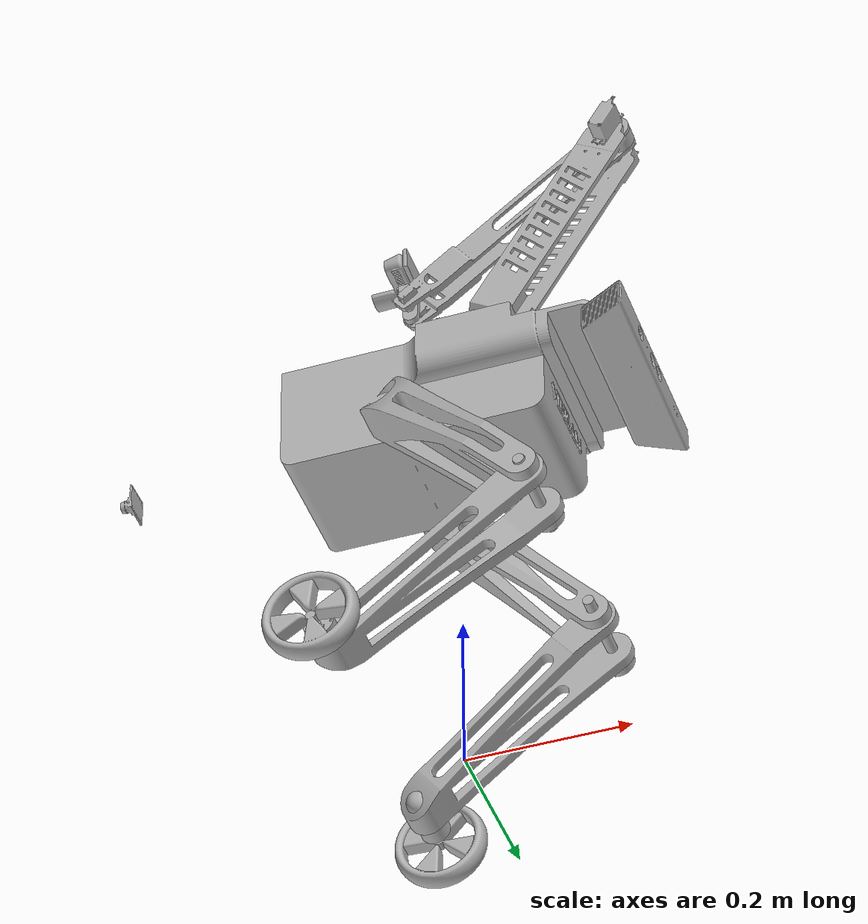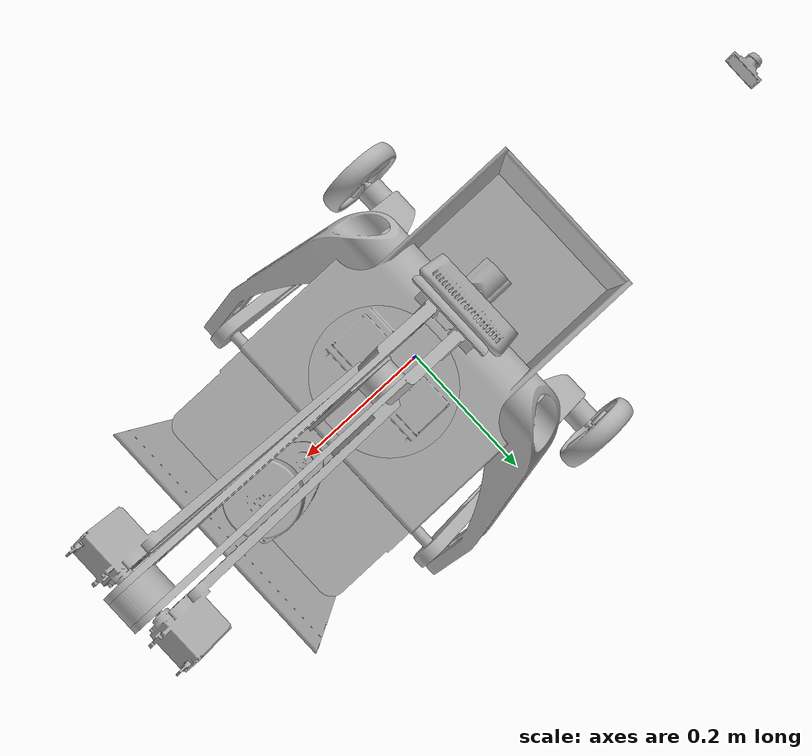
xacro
<?xml version="1.0" ?>
<robot name="vikram" xmlns:xacro="http://www.ros.org/wiki/xacro">

<xacro:include filename="$(find vikram_description)/urdf/materials.xacro" />
<xacro:include filename="$(find vikram_description)/urdf/vikram.trans" />
<xacro:include filename="$(find vikram_description)/urdf/vikram.gazebo" />
<link name="base_link">
  <inertial>
    <origin rpy="0 0 0" xyz="0.010234443834109541 0.005839078006195386 0.5156054657497448"/>
    <mass value="7.067521369442045"/>
    <inertia ixx="0.037702" ixy="-0.000184" ixz="-0.006128" iyy="0.061125" iyz="-4.7e-05" izz="0.069572"/>
  </inertial>
  <visual>
    <origin rpy="0 0 0" xyz="0 0 0"/>
    <geometry>
      <mesh filename="package://vikram_description/meshes/base_link.stl" scale="0.001 0.001 0.001"/>
    </geometry>
    <material name="silver_default"/>
  </visual>
  <collision>
    <origin rpy="0 0 0" xyz="0 0 0"/>
    <geometry>
      <mesh filename="package://vikram_description/meshes/base_link.stl" scale="0.001 0.001 0.001"/>
    </geometry>
  </collision>
</link>

<link name="kinect_link_1">
  <inertial>
    <origin rpy="0 0 0" xyz="-0.105299 -0.006474 -0.539516"/>
    <mass value="0.5422411898927701"/>
    <inertia ixx="0.002787" ixy="1.2e-05" ixz="-1e-06" iyy="0.000223" iyz="-2e-06" izz="0.002879"/>
  </inertial>
  <visual>
    <origin rpy="0 0 0" xyz="-0.105299 -0.006474 -0.539516"/>
    <geometry>
      <mesh filename="package://vikram_description/meshes/kinect_link_1.stl" scale="0.001 0.001 0.001"/>
    </geometry>
    <material name="silver_default"/>
  </visual>
  <collision>
    <origin rpy="0 0 0" xyz="-0.105299 -0.006474 -0.539516"/>
    <geometry>
      <mesh filename="package://vikram_description/meshes/kinect_link_1.stl" scale="0.001 0.001 0.001"/>
    </geometry>
  </collision>
</link>

<link name="kinect_depth_link"></link>

<link name="camera_link_1">
  <inertial>
    <origin rpy="0 0 0" xyz="-0.005985213903832054 4.595539482990865e-06 -5.399212529610953e-05"/>
    <mass value="0.12265645188988797"/>
    <inertia ixx="1.3e-05" ixy="0.0" ixz="0.0" iyy="1e-05" iyz="0.0" izz="1.1e-05"/>
  </inertial>
  <visual>
    <origin rpy="0 0 3.14" xyz="0.202846 -0.004446 -0.521349"/>
    <geometry>
      <mesh filename="package://vikram_description/meshes/camera_link_1.stl" scale="0.001 0.001 0.001"/>
    </geometry>
    <material name="silver_default"/>
  </visual>
  <collision>
    <origin rpy="0 0 0" xyz="0.202846 -0.004446 -0.521349"/>
    <geometry>
      <mesh filename="package://vikram_description/meshes/camera_link_1.stl" scale="0.001 0.001 0.001"/>
    </geometry>
  </collision>
</link>

<link name="leftthigh_1">
  <inertial>
    <origin rpy="0 0 0" xyz="0.07377829422801023 0.04639468168714603 -0.080608614634392"/>
    <mass value="0.4240185441189414"/>
    <inertia ixx="0.002324" ixy="-0.000216" ixz="0.001547" iyy="0.003343" iyz="0.000238" izz="0.002039"/>
  </inertial>
  <visual>
    <origin rpy="0 0 0" xyz="0.058444 -0.090338 -0.467873"/>
    <geometry>
      <mesh filename="package://vikram_description/meshes/leftthigh_1.stl" scale="0.001 0.001 0.001"/>
    </geometry>
    <material name="silver_default"/>
  </visual>
  <collision>
    <origin rpy="0 0 0" xyz="0.058444 -0.090338 -0.467873"/>
    <geometry>
      <mesh filename="package://vikram_description/meshes/leftthigh_1.stl" scale="0.001 0.001 0.001"/>
    </geometry>
  </collision>
</link>

<link name="rightthigh_1">
  <inertial>
    <origin rpy="0 0 0" xyz="0.07380773601400971 -0.045398010762963056 -0.0811467726085155"/>
    <mass value="0.4240185441189414"/>
    <inertia ixx="0.00232" ixy="0.000201" ixz="0.00155" iyy="0.003348" iyz="-0.000218" izz="0.002037"/>
  </inertial>
  <visual>
    <origin rpy="0 0 0" xyz="0.057446 0.079659 -0.467736"/>
    <geometry>
      <mesh filename="package://vikram_description/meshes/rightthigh_1.stl" scale="0.001 0.001 0.001"/>
    </geometry>
    <material name="silver_default"/>
  </visual>
  <collision>
    <origin rpy="0 0 0" xyz="0.057446 0.079659 -0.467736"/>
    <geometry>
      <mesh filename="package://vikram_description/meshes/rightthigh_1.stl" scale="0.001 0.001 0.001"/>
    </geometry>
  </collision>
</link>

<link name="motor_link_1_1">
  <inertial>
    <origin rpy="0 0 0" xyz="-4.118988736685758e-05 0.006740500896890156 -1.1205790919913139e-05"/>
    <mass value="0.06999823026998438"/>
    <inertia ixx="3.2e-05" ixy="0.0" ixz="-0.0" iyy="1.1e-05" iyz="-0.0" izz="3.2e-05"/>
  </inertial>
  <visual>
    <origin rpy="0 0 0" xyz="0.104626 0.174622 -0.076216"/>
    <geometry>
      <mesh filename="package://vikram_description/meshes/motor_link_1_1.stl" scale="0.001 0.001 0.001"/>
    </geometry>
    <material name="silver_default"/>
  </visual>
  <collision>
    <origin rpy="0 0 0" xyz="0.104626 0.174622 -0.076216"/>
    <geometry>
      <mesh filename="package://vikram_description/meshes/motor_link_1_1.stl" scale="0.001 0.001 0.001"/>
    </geometry>
  </collision>
</link>

<link name="motor_link_1_2">
  <inertial>
    <origin rpy="0 0 0" xyz="3.847032894968572e-05 -0.006739958438094273 -2.230950096296369e-05"/>
    <mass value="0.06999823026998438"/>
    <inertia ixx="3.2e-05" ixy="0.0" ixz="-0.0" iyy="1.1e-05" iyz="0.0" izz="3.2e-05"/>
  </inertial>
  <visual>
    <origin rpy="0 0 0" xyz="0.10744 -0.185367 -0.07736"/>
    <geometry>
      <mesh filename="package://vikram_description/meshes/motor_link_1_2.stl" scale="0.001 0.001 0.001"/>
    </geometry>
    <material name="silver_default"/>
  </visual>
  <collision>
    <origin rpy="0 0 0" xyz="0.10744 -0.185367 -0.07736"/>
    <geometry>
      <mesh filename="package://vikram_description/meshes/motor_link_1_2.stl" scale="0.001 0.001 0.001"/>
    </geometry>
  </collision>
</link>

<link name="wheel_link_2_2">
  <inertial>
    <origin rpy="0 0 0" xyz="0.00011670928409539261 -0.019853226898058435 -1.620426218622295e-05"/>
    <mass value="0.1426377919274306"/>
    <inertia ixx="0.000147" ixy="-1e-06" ixz="-0.0" iyy="0.000281" iyz="0.0" izz="0.000147"/>
  </inertial>
  <visual>
    <origin rpy="0 0 0" xyz="0.105338 0.201121 -0.069249"/>
    <geometry>
      <mesh filename="package://vikram_description/meshes/wheel_link_2_2.stl" scale="0.001 0.001 0.001"/>
    </geometry>
    <material name="silver_default"/>
  </visual>
  <collision>
    <origin rpy="0 0 0" xyz="0.105338 0.201121 -0.069249"/>
    <geometry>
      <mesh filename="package://vikram_description/meshes/wheel_link_2_2.stl" scale="0.001 0.001 0.001"/>
    </geometry>
  </collision>
</link>

<link name="wheel_link_2_1">
  <inertial>
    <origin rpy="0 0 0" xyz="-0.00011679030504793686 0.019853386055058042 1.6249222171277333e-05"/>
    <mass value="0.1426377919274306"/>
    <inertia ixx="0.000147" ixy="-1e-06" ixz="0.0" iyy="0.000281" iyz="0.0" izz="0.000147"/>
  </inertial>
  <visual>
    <origin rpy="0 0 0" xyz="0.107855 -0.211871 -0.070386"/>
    <geometry>
      <mesh filename="package://vikram_description/meshes/wheel_link_2_1.stl" scale="0.001 0.001 0.001"/>
    </geometry>
    <material name="silver_default"/>
  </visual>
  <collision>
    <origin rpy="0 0 0" xyz="0.107855 -0.211871 -0.070386"/>
    <geometry>
      <mesh filename="package://vikram_description/meshes/wheel_link_2_1.stl" scale="0.001 0.001 0.001"/>
    </geometry>
  </collision>
</link>

<link name="shoulder_link_1">
  <inertial>
    <origin rpy="0 0 0" xyz="0.10535734876012619 0.010445042287466783 0.16921043553877368"/>
    <mass value="0.3248629426538314"/>
    <inertia ixx="0.003938" ixy="-5e-06" ixz="-0.002287" iyy="0.005264" iyz="-9e-06" izz="0.001686"/>
  </inertial>
  <visual>
    <origin rpy="0 0 0" xyz="-0.022298 0.007587 -0.638232"/>
    <geometry>
      <mesh filename="package://vikram_description/meshes/shoulder_link_1.stl" scale="0.001 0.001 0.001"/>
    </geometry>
    <material name="silver_default"/>
  </visual>
  <collision>
    <origin rpy="0 0 0" xyz="-0.022298 0.007587 -0.638232"/>
    <geometry>
      <mesh filename="package://vikram_description/meshes/shoulder_link_1.stl" scale="0.001 0.001 0.001"/>
    </geometry>
  </collision>
</link>

<link name="elbow_link_1">
  <inertial>
    <origin rpy="0 0 0" xyz="-0.16761417274766444 -0.010877496122171239 -0.1315159566827231"/>
    <mass value="0.14217501750592101"/>
    <inertia ixx="0.00078" ixy="-6e-06" ixz="-0.000932" iyy="0.001955" iyz="-5e-06" izz="0.001237"/>
  </inertial>
  <visual>
    <origin rpy="0 0 0" xyz="-0.211852 -0.012739 -0.942825"/>
    <geometry>
      <mesh filename="package://vikram_description/meshes/elbow_link_1.stl" scale="0.001 0.001 0.001"/>
    </geometry>
    <material name="silver_default"/>
  </visual>
  <collision>
    <origin rpy="0 0 0" xyz="-0.211852 -0.012739 -0.942825"/>
    <geometry>
      <mesh filename="package://vikram_description/meshes/elbow_link_1.stl" scale="0.001 0.001 0.001"/>
    </geometry>
  </collision>
</link>

<link name="wrist_link_1">
  <inertial>
    <origin rpy="0 0 0" xyz="-0.0003923470619509456 0.003990244802068195 0.01623925564380535"/>
    <mass value="0.01246916080662524"/>
    <inertia ixx="4e-06" ixy="-0.0" ixz="0.0" iyy="4e-06" iyz="0.0" izz="1e-06"/>
  </inertial>
  <visual>
    <origin rpy="0 0 0" xyz="0.063922 0.002655 -0.726297"/>
    <geometry>
      <mesh filename="package://vikram_description/meshes/wrist_link_1.stl" scale="0.001 0.001 0.001"/>
    </geometry>
    <material name="silver_default"/>
  </visual>
  <collision>
    <origin rpy="0 0 0" xyz="0.063922 0.002655 -0.726297"/>
    <geometry>
      <mesh filename="package://vikram_description/meshes/wrist_link_1.stl" scale="0.001 0.001 0.001"/>
    </geometry>
  </collision>
</link>

<link name="grip_link_1">
  <inertial>
    <origin rpy="0 0 0" xyz="-0.038797787730500036 -0.00019879767110197945 0.0034710253664366197"/>
    <mass value="0.012180779699964627"/>
    <inertia ixx="1e-06" ixy="-0.0" ixz="0.0" iyy="3e-06" iyz="-0.0" izz="3e-06"/>
  </inertial>
  <visual>
    <origin rpy="0 0 0" xyz="0.050971 -0.001367 -0.7496"/>
    <geometry>
      <mesh filename="package://vikram_description/meshes/grip_link_1.stl" scale="0.001 0.001 0.001"/>
    </geometry>
    <material name="silver_default"/>
  </visual>
  <collision>
    <origin rpy="0 0 0" xyz="0.050971 -0.001367 -0.7496"/>
    <geometry>
      <mesh filename="package://vikram_description/meshes/grip_link_1.stl" scale="0.001 0.001 0.001"/>
    </geometry>
  </collision>
</link>

<link name="arm_base_1">
  <inertial>
    <origin rpy="0 0 0" xyz="-0.0057924089638744375 -0.0026408663022563336 0.017228924140837987"/>
    <mass value="0.3055003056442891"/>
    <inertia ixx="0.000454" ixy="1e-06" ixz="1.4e-05" iyy="0.000272" iyz="-0.0" izz="0.000597"/>
  </inertial>
  <visual>
    <origin rpy="0 0 0" xyz="-0.024179 -0.005047 -0.601349"/>
    <geometry>
      <mesh filename="package://vikram_description/meshes/arm_base_1.stl" scale="0.001 0.001 0.001"/>
    </geometry>
    <material name="silver_default"/>
  </visual>
  <collision>
    <origin rpy="0 0 0" xyz="-0.024179 -0.005047 -0.601349"/>
    <geometry>
      <mesh filename="package://vikram_description/meshes/arm_base_1.stl" scale="0.001 0.001 0.001"/>
    </geometry>
  </collision>
</link>

<link name="cam_support_1">
  <inertial>
    <origin rpy="0 0 0" xyz="0.005828672030710191 2.158204139185438e-05 0.01513625495281179"/>
    <mass value="0.015667625068621845"/>
    <inertia ixx="9e-06" ixy="0.0" ixz="0.0" iyy="1e-06" iyz="-0.0" izz="8e-06"/>
  </inertial>
  <visual>
    <origin rpy="0 0 0" xyz="0.064808 -0.00131 -0.76429"/>
    <geometry>
      <mesh filename="package://vikram_description/meshes/cam_support_1.stl" scale="0.001 0.001 0.001"/>
    </geometry>
    <material name="silver_default"/>
  </visual>
  <collision>
    <origin rpy="0 0 0" xyz="0.064808 -0.00131 -0.76429"/>
    <geometry>
      <mesh filename="package://vikram_description/meshes/cam_support_1.stl" scale="0.001 0.001 0.001"/>
    </geometry>
  </collision>
</link>

<link name="laser_link_1">
  <inertial>
    <origin rpy="0 0 0" xyz="0.013004298288322252 0.00014061093622570742 0.034654362551334805"/>
    <mass value="0.18084811340421866"/>
    <inertia ixx="8.4e-05" ixy="-0.0" ixz="-2.2e-05" iyy="0.000131" iyz="0.0" izz="0.000149"/>
  </inertial>
  <visual>
    <origin rpy="0 0 0" xyz="-0.150117 -0.00648 -0.56718"/>
    <geometry>
      <mesh filename="package://vikram_description/meshes/laser_link_1.stl" scale="0.001 0.001 0.001"/>
    </geometry>
    <material name="silver_default"/>
  </visual>
  <collision>
    <origin rpy="0 0 0" xyz="-0.150117 -0.00648 -0.56718"/>
    <geometry>
      <mesh filename="package://vikram_description/meshes/laser_link_1.stl" scale="0.001 0.001 0.001"/>
    </geometry>
  </collision>
</link>

<link name="realsense_link_1">
  <inertial>
    <origin rpy="0 0 0" xyz="-0.011569393808020176 0.003455662851355681 -0.00044627785563822187"/>
    <mass value="0.04228675377977692"/>
    <inertia ixx="2.8e-05" ixy="0.0" ixz="-0.0" iyy="4e-06" iyz="-0.0" izz="2.8e-05"/>
  </inertial>
  <visual>
    <origin rpy="0 0 0" xyz="0.062649 -0.00131 -0.779343"/>
    <geometry>
      <mesh filename="package://vikram_description/meshes/realsense_link_1.stl" scale="0.001 0.001 0.001"/>
    </geometry>
    <material name="silver_default"/>
  </visual>
  <collision>
    <origin rpy="0 0 0" xyz="0.062649 -0.00131 -0.779343"/>
    <geometry>
      <mesh filename="package://vikram_description/meshes/realsense_link_1.stl" scale="0.001 0.001 0.001"/>
    </geometry>
  </collision>
</link>

<link name="front_name_1">
  <inertial>
    <origin rpy="0 0 0" xyz="0.0009890933495205756 0.0022395089270391064 -0.00026699090220527744"/>
    <mass value="0.0013045732982823952"/>
    <inertia ixx="1e-06" ixy="0.0" ixz="0.0" iyy="0.0" iyz="0.0" izz="1e-06"/>
  </inertial>
  <visual>
    <origin rpy="0 0 0" xyz="-0.130614 -0.006427 -0.491711"/>
    <geometry>
      <mesh filename="package://vikram_description/meshes/front_name_1.stl" scale="0.001 0.001 0.001"/>
    </geometry>
    <material name="silver_default"/>
  </visual>
  <collision>
    <origin rpy="0 0 0" xyz="-0.130614 -0.006427 -0.491711"/>
    <geometry>
      <mesh filename="package://vikram_description/meshes/front_name_1.stl" scale="0.001 0.001 0.001"/>
    </geometry>
  </collision>
</link>

<link name="rightleg_1">
  <inertial>
    <origin rpy="0 0 0" xyz="-0.11491028875252002 0.0329615808401868 -0.08886658419282911"/>
    <mass value="0.33293610955358743"/>
    <inertia ixx="0.001849" ixy="-0.000196" ixz="-0.001976" iyy="0.004214" iyz="-0.000153" izz="0.00286"/>
  </inertial>
  <visual>
    <origin rpy="0 0 0" xyz="-0.131827 0.173383 -0.260849"/>
    <geometry>
      <mesh filename="package://vikram_description/meshes/rightleg_1.stl" scale="0.001 0.001 0.001"/>
    </geometry>
    <material name="silver_default"/>
  </visual>
  <collision>
    <origin rpy="0 0 0" xyz="-0.131827 0.173383 -0.260849"/>
    <geometry>
      <mesh filename="package://vikram_description/meshes/rightleg_1.stl" scale="0.001 0.001 0.001"/>
    </geometry>
  </collision>
</link>

<link name="leftleg_1">
  <inertial>
    <origin rpy="0 0 0" xyz="-0.11465631046348852 0.045836144527146225 -0.08927904292411595"/>
    <mass value="0.33293610955358743"/>
    <inertia ixx="0.001854" ixy="0.000171" ixz="-0.001979" iyy="0.004218" iyz="0.000133" izz="0.002851"/>
  </inertial>
  <visual>
    <origin rpy="0 0 0" xyz="-0.130161 -0.106612 -0.261054"/>
    <geometry>
      <mesh filename="package://vikram_description/meshes/leftleg_1.stl" scale="0.001 0.001 0.001"/>
    </geometry>
    <material name="silver_default"/>
  </visual>
  <collision>
    <origin rpy="0 0 0" xyz="-0.130161 -0.106612 -0.261054"/>
    <geometry>
      <mesh filename="package://vikram_description/meshes/leftleg_1.stl" scale="0.001 0.001 0.001"/>
    </geometry>
  </collision>
</link>

<link name="rod_1">
  <inertial>
    <origin rpy="0 0 0" xyz="-0.00026988223693633073 0.04599902645967602 3.742776667897685e-05"/>
    <mass value="0.01959163529215445"/>
    <inertia ixx="2.7e-05" ixy="0.0" ixz="0.0" iyy="0.0" iyz="-0.0" izz="2.7e-05"/>
  </inertial>
  <visual>
    <origin rpy="0 0 0" xyz="-0.131821 0.172383 -0.260849"/>
    <geometry>
      <mesh filename="package://vikram_description/meshes/rod_1.stl" scale="0.001 0.001 0.001"/>
    </geometry>
    <material name="silver_default"/>
  </visual>
  <collision>
    <origin rpy="0 0 0" xyz="-0.131821 0.172383 -0.260849"/>
    <geometry>
      <mesh filename="package://vikram_description/meshes/rod_1.stl" scale="0.001 0.001 0.001"/>
    </geometry>
  </collision>
</link>

<link name="rod_2">
  <inertial>
    <origin rpy="0 0 0" xyz="0.0002697620586838423 -0.04599875488781463 -3.672717308494944e-05"/>
    <mass value="0.01959163529215445"/>
    <inertia ixx="2.7e-05" ixy="0.0" ixz="0.0" iyy="0.0" iyz="-0.0" izz="2.7e-05"/>
  </inertial>
  <visual>
    <origin rpy="0 0 0" xyz="-0.129698 -0.18561 -0.261117"/>
    <geometry>
      <mesh filename="package://vikram_description/meshes/rod_2.stl" scale="0.001 0.001 0.001"/>
    </geometry>
    <material name="silver_default"/>
  </visual>
  <collision>
    <origin rpy="0 0 0" xyz="-0.129698 -0.18561 -0.261117"/>
    <geometry>
      <mesh filename="package://vikram_description/meshes/rod_2.stl" scale="0.001 0.001 0.001"/>
    </geometry>
  </collision>
</link>

<link name="stand_2">
  <inertial>
    <origin rpy="0 0 0" xyz="0.02957327313913402 0.0071788861844907514 -0.15196323108802973"/>
    <mass value="0.11613787843167664"/>
    <inertia ixx="0.000586" ixy="-0.0" ixz="7.2e-05" iyy="0.000601" iyz="1e-06" izz="2.6e-05"/>
  </inertial>

  <collision>
    <origin rpy="0 0 0" xyz="-0.130343 -0.075612 -0.261029"/>
    <geometry>
      <mesh filename="package://vikram_description/meshes/stand_2.stl" scale="0.001 0.001 0.001"/>
    </geometry>
  </collision>
</link>

<link name="stand_1">
  <inertial>
    <origin rpy="0 0 0" xyz="0.029653448877985406 -0.00660133573833948 -0.1519739790714708"/>
    <mass value="0.11613787843167664"/>
    <inertia ixx="0.000586" ixy="-0.0" ixz="7.2e-05" iyy="0.000601" iyz="1e-06" izz="2.6e-05"/>
  </inertial>

  <collision>
    <origin rpy="0 0 0" xyz="-0.131176 0.062385 -0.260938"/>
    <geometry>
      <mesh filename="package://vikram_description/meshes/stand_1.stl" scale="0.001 0.001 0.001"/>
    </geometry>
  </collision>
</link>

<joint name="Rigid1" type="fixed">
  <origin rpy="0 0 0" xyz="0.145299 0.006474 0.539516"/>
  <parent link="base_link"/>
  <child link="kinect_link_1"/>
</joint>

<joint name="kinect_joint" type="fixed">
  <origin xyz="0 0 0" rpy="-1.57 0 -1.57 "/>
  <parent link="kinect_link_1"/>
  <child link="kinect_depth_link"/>
</joint>

<joint name="Rigid3" type="fixed">
  <origin rpy="0 0 3.14" xyz="-0.022846 0.004446 0.521349"/>
  <parent link="base_link"/>
  <child link="camera_link_1"/>
</joint>

<joint name="thigh_base_left" type="fixed">
  <origin rpy="0 0 0" xyz="-0.058444 0.090338 0.467873"/>
  <parent link="base_link"/>
  <child link="leftthigh_1"/>
  <axis xyz="-0.005867 0.999982 0.000806"/>
</joint>

<joint name="thigh_base_right" type="fixed">
  <origin rpy="0 0 0" xyz="-0.057446 -0.079659 0.467736"/>
  <parent link="base_link"/>
  <child link="rightthigh_1"/>
  <axis xyz="0.005867 -0.999982 -0.000806"/>
</joint>

<joint name="Rigid28" type="fixed">
  <origin rpy="0 0 0" xyz="-0.236453 -0.001239 -0.184633"/>
  <parent link="rightleg_1"/>
  <child link="motor_link_1_1"/>
</joint>

<joint name="Rigid29" type="fixed">
  <origin rpy="0 0 0" xyz="-0.237601 0.078755 -0.183694"/>
  <parent link="leftleg_1"/>
  <child link="motor_link_1_2"/>
</joint>

<joint name="wheel_right" type="continuous">
  <origin rpy="0 0 0" xyz="-0.000712 -0.026499 -0.006967"/>
  <parent link="motor_link_1_1"/>
  <child link="wheel_link_2_2"/>
  <axis xyz="0.005867 0.999982 0.000806"/>
</joint>

<joint name="wheel_left" type="continuous">
  <origin rpy="0 0 0" xyz="-0.000415 0.026504 -0.006974"/>
  <parent link="motor_link_1_2"/>
  <child link="wheel_link_2_1"/>
  <axis xyz="0.005867 0.999982 0.000806"/>
</joint>

<joint name="shoulder" type="fixed">
  <origin rpy="0 0 0" xyz="-0.001881 -0.012634 0.036883"/>
  <parent link="arm_base_1"/>
  <child link="shoulder_link_1"/>
  <axis xyz="-0.005867 0.999982 0.000806"/>
</joint>

<joint name="elbow" type="fixed">
  <origin rpy="0 0 0" xyz="0.189554 0.020326 0.304593"/>
  <parent link="shoulder_link_1"/>
  <child link="elbow_link_1"/>
  <axis xyz="0.005867 -0.999982 -0.000806"/>
</joint>

<joint name="wrist" type="fixed">
  <origin rpy="0 0 0" xyz="-0.275774 -0.015394 -0.216528"/>
  <parent link="elbow_link_1"/>
  <child link="wrist_link_1"/>
  <axis xyz="-0.005867 0.999982 0.000806"/>
</joint>

<joint name="Rigid41" type="fixed">
  <origin rpy="0 0 0" xyz="0.012951 0.004022 0.023303"/>
  <parent link="wrist_link_1"/>
  <child link="grip_link_1"/>
</joint>

<joint name="arm_base" type="fixed">
  <origin rpy="0 0 0" xyz="0.024179 0.005047 0.601349"/>
  <parent link="base_link"/>
  <child link="arm_base_1"/>
  <axis xyz="-0.006594 -0.000845 0.999978"/>
</joint>

<joint name="Rigid43" type="fixed">
  <origin rpy="0 0 0" xyz="-0.000886 0.003965 0.037993"/>
  <parent link="wrist_link_1"/>
  <child link="cam_support_1"/>
</joint>

<joint name="Rigid46" type="fixed">
  <origin rpy="0 0 0" xyz="0.150117 0.00648 0.57718"/>
  <parent link="base_link"/>
  <child link="laser_link_1"/>
</joint>

<joint name="Rigid48" type="fixed">
  <origin rpy="0 0 0" xyz="0.002159 0.0 0.015053"/>
  <parent link="cam_support_1"/>
  <child link="realsense_link_1"/>
</joint>

<joint name="Rigid51" type="fixed">
  <origin rpy="0 0 0" xyz="0.130614 0.006427 0.491711"/>
  <parent link="base_link"/>
  <child link="front_name_1"/>
</joint>

<joint name="leg_thigh_right" type="fixed">
  <origin rpy="0 0 0" xyz="0.189273 -0.093724 -0.206887"/>
  <parent link="rightthigh_1"/>
  <child link="rightleg_1"/>
  <axis xyz="-0.005867 0.999982 0.000806"/>
</joint>

<joint name="leg_thigh_left" type="fixed">
  <origin rpy="0 0 0" xyz="0.188605 0.016274 -0.206819"/>
  <parent link="leftthigh_1"/>
  <child link="leftleg_1"/>
  <axis xyz="0.005867 -0.999982 -0.000806"/>
</joint>

<joint name="rod_leg_right" type="fixed">
  <origin rpy="0 0 0" xyz="-6e-06 0.001 0.0"/>
  <parent link="rightleg_1"/>
  <child link="rod_1"/>
</joint>

<joint name="rod_leg_left" type="fixed">
  <origin rpy="0 0 0" xyz="-0.000463 0.078998 6.3e-05"/>
  <parent link="leftleg_1"/>
  <child link="rod_2"/>
</joint>

<joint name="stand_rod_left" type="fixed">
  <origin rpy="0 0 0" xyz="0.000645 -0.109998 -8.8e-05"/>
  <parent link="rod_2"/>
  <child link="stand_2"/>
  <axis xyz="0.005867 -0.999982 -0.000806"/>
</joint>

<joint name="stand_rod_right" type="fixed">
  <origin rpy="0 0 0" xyz="-0.000645 0.109998 8.9e-05"/>
  <parent link="rod_1"/>
  <child link="stand_1"/>
  <axis xyz="-0.005867 0.999982 0.000806"/>
</joint>

</robot>

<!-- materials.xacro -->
<robot name="vikram" xmlns:xacro="http://www.ros.org/wiki/xacro" >

<material name="silver_default">
  <color rgba="0.700 0.700 0.700 1.000"/>
</material>

</robot>

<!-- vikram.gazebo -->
<robot name="vikram" xmlns:xacro="http://www.ros.org/wiki/xacro" >

<xacro:property name="body_color" value="Gazebo/Silver" />

<gazebo>
  <plugin filename="libgazebo_ros_control.so" name="control"/>
</gazebo>
<gazebo reference="base_link">
  <material>${body_color}</material>
  <mu1>0.2</mu1>
  <mu2>0.2</mu2>
  <selfCollide>true</selfCollide>
  <gravity>true</gravity>
</gazebo>

<gazebo reference="kinect_link_1">
  <material>${body_color}</material>
  <mu1>0.2</mu1>
  <mu2>0.2</mu2>
  <selfCollide>true</selfCollide>
</gazebo>

<gazebo reference="camera_link_1">
  <material>${body_color}</material>
  <mu1>0.2</mu1>
  <mu2>0.2</mu2>
  <selfCollide>true</selfCollide>
</gazebo>

<gazebo reference="leftthigh_1">
  <material>${body_color}</material>
  <mu1>0.2</mu1>
  <mu2>0.2</mu2>
  <selfCollide>true</selfCollide>
</gazebo>

<gazebo reference="rightthigh_1">
  <material>${body_color}</material>
  <mu1>0.2</mu1>
  <mu2>0.2</mu2>
  <selfCollide>true</selfCollide>
</gazebo>

<gazebo reference="motor_link_1_1">
  <material>${body_color}</material>
  <mu1>0.2</mu1>
  <mu2>0.2</mu2>
  <selfCollide>true</selfCollide>
</gazebo>

<gazebo reference="motor_link_1_2">
  <material>${body_color}</material>
  <mu1>0.2</mu1>
  <mu2>0.2</mu2>
  <selfCollide>true</selfCollide>
</gazebo>

<gazebo reference="wheel_link_2_2">
  <material>${body_color}</material>
  <mu1>1000</mu1>
  <mu2>1000</mu2>
  <selfCollide>true</selfCollide>
</gazebo>

<gazebo reference="wheel_link_2_1">
  <material>${body_color}</material>
  <mu1>1000</mu1>
  <mu2>1000</mu2>
  <selfCollide>true</selfCollide>
</gazebo>

<gazebo reference="shoulder_link_1">
  <material>${body_color}</material>
  <mu1>0.2</mu1>
  <mu2>0.2</mu2>
  <selfCollide>true</selfCollide>
</gazebo>

<gazebo reference="elbow_link_1">
  <material>${body_color}</material>
  <mu1>0.2</mu1>
  <mu2>0.2</mu2>
  <selfCollide>true</selfCollide>
</gazebo>

<gazebo reference="wrist_link_1">
  <material>${body_color}</material>
  <mu1>0.2</mu1>
  <mu2>0.2</mu2>
  <selfCollide>true</selfCollide>
</gazebo>

<gazebo reference="grip_link_1">
  <material>${body_color}</material>
  <mu1>0.2</mu1>
  <mu2>0.2</mu2>
  <selfCollide>true</selfCollide>
</gazebo>

<gazebo reference="arm_base_1">
  <material>${body_color}</material>
  <mu1>0.2</mu1>
  <mu2>0.2</mu2>
  <selfCollide>true</selfCollide>
</gazebo>

<gazebo reference="cam_support_1">
  <material>${body_color}</material>
  <mu1>0.2</mu1>
  <mu2>0.2</mu2>
  <selfCollide>true</selfCollide>
</gazebo>

<gazebo reference="laser_link_1">
  <material>${body_color}</material>
  <mu1>0.2</mu1>
  <mu2>0.2</mu2>
  <selfCollide>true</selfCollide>
</gazebo>

<gazebo reference="realsense_link_1">
  <material>${body_color}</material>
  <mu1>0.2</mu1>
  <mu2>0.2</mu2>
  <selfCollide>true</selfCollide>
</gazebo>

<gazebo reference="front_name_1">
  <material>${body_color}</material>
  <mu1>0.2</mu1>
  <mu2>0.2</mu2>
  <selfCollide>true</selfCollide>
</gazebo>

<gazebo reference="rightleg_1">
  <material>${body_color}</material>
  <mu1>0.2</mu1>
  <mu2>0.2</mu2>
  <selfCollide>true</selfCollide>
</gazebo>

<gazebo reference="leftleg_1">
  <material>${body_color}</material>
  <mu1>0.2</mu1>
  <mu2>0.2</mu2>
  <selfCollide>true</selfCollide>
</gazebo>

<gazebo reference="rod_1">
  <material>${body_color}</material>
  <mu1>0.2</mu1>
  <mu2>0.2</mu2>
  <selfCollide>true</selfCollide>
</gazebo>

<gazebo reference="rod_2">
  <material>${body_color}</material>
  <mu1>0.2</mu1>
  <mu2>0.2</mu2>
  <selfCollide>true</selfCollide>
</gazebo>

<gazebo reference="stand_2">
  <material>${body_color}</material>
  <mu1>0.1</mu1>
  <mu2>0.1</mu2>
  <selfCollide>true</selfCollide>
</gazebo>

<gazebo reference="stand_1">
  <material>${body_color}</material>
  <mu1>0.1</mu1>
  <mu2>0.1</mu2>
  <selfCollide>true</selfCollide>
</gazebo>

  <!-- camera -->
  <gazebo reference="camera_link_1">
    <sensor type="camera" name="back_camera">
      <update_rate>30.0</update_rate>
      <camera name="back_camera">
        <horizontal_fov>1.3962634</horizontal_fov>
        <image>
          <width>800</width>
          <height>800</height>
          <format>R8G8B8</format>
        </image>
        <clip>
          <near>0.02</near>
          <far>300</far>
        </clip>
        <noise>
          <type>gaussian</type>
          <!-- Noise is sampled independently per pixel on each frame.
               That pixel's noise value is added to each of its color
               channels, which at that point lie in the range [0,1]. -->
          <mean>0.0</mean>
          <stddev>0.007</stddev>
        </noise>
      </camera>
      <plugin name="camera_controller" filename="libgazebo_ros_camera.so">
        <alwaysOn>true</alwaysOn>
        <updateRate>0.0</updateRate>
        <cameraName>back_camera</cameraName>
        <imageTopicName>image_raw</imageTopicName>
        <cameraInfoTopicName>camera_info</cameraInfoTopicName>
        <frameName>camera_link_1</frameName>
        <hackBaseline>0.07</hackBaseline>
        <distortionK1>0.0</distortionK1>
        <distortionK2>0.0</distortionK2>
        <distortionK3>0.0</distortionK3>
        <distortionT1>0.0</distortionT1>
        <distortionT2>0.0</distortionT2>
      </plugin>
    </sensor>
  </gazebo>
<!-- Kinect camera-->
<gazebo reference="kinect_link_1">
  <sensor name="kinect_link_1_camera" type="depth">
    <pose>0 0 0 0 0 0</pose>
    <visualize>true</visualize>
    <update_rate>20</update_rate>
    <camera>
      <horizontal_fov>1.047198</horizontal_fov>
      <image>
        <width>640</width>
        <height>480</height>
        <format>R8G8B8</format>
      </image>
      <clip>
        <near>0.2</near>
        <far>6</far>
      </clip>
    </camera>
    <plugin name="kinect_link_1_controller" filename="libgazebo_ros_openni_kinect.so">
      <baseline>0.5</baseline>
      <alwaysOn>true</alwaysOn>
      <updateRate>0.0</updateRate>

      <cameraName>kinect</cameraName>
      <imageTopicName>/kinect/color/image_raw</imageTopicName>
      <cameraInfoTopicName>/kinect/color/camera_info</cameraInfoTopicName>
      <depthImageTopicName>/kinect/depth/image_raw</depthImageTopicName>
      <depthImageInfoTopicName>/kinect/depth/camera_info</depthImageInfoTopicName>
      <pointCloudTopicName>/kinect/depth/points</pointCloudTopicName>
      <frameName>kinect_depth_link</frameName>
      <pointCloudCutoff>0.5</pointCloudCutoff>
      <pointCloudCutoffMax>8.0</pointCloudCutoffMax>
      <distortionK1>0.00000001</distortionK1>
      <distortionK2>0.00000001</distortionK2>
      <distortionK3>0.00000001</distortionK3>
      <distortionT1>0.00000001</distortionT1>
      <distortionT2>0.00000001</distortionT2>
      <CxPrime>0</CxPrime>
      <Cx>0</Cx>
      <Cy>0</Cy>
      <focalLength>0</focalLength>
      <hackBaseline>0</hackBaseline>
    </plugin>
  </sensor>
</gazebo>

  <!-- laser -->
  <gazebo reference="laser_link_1">
    <sensor type="ray" name="laser_link_1">
      <pose>0 0 0 0 0 0</pose>
      <visualize>true</visualize>
      <update_rate>40</update_rate>
      <ray>
        <scan>
          <horizontal>
            <samples>720</samples>
            <resolution>1</resolution>
            <min_angle>-1.57</min_angle>
            <max_angle>1.57</max_angle>
          </horizontal>
        </scan>
        <range>
          <min>0.1</min>
          <max>6.0</max>
          <resolution>0.01</resolution>
        </range>
        <noise>
          <type>gaussian</type>
          <mean>0.0</mean>
          <stddev>0.01</stddev>
        </noise>
      </ray>
      <plugin name="gazebo_ros_head_hokuyo_controller" filename="libgazebo_ros_laser.so">
        <topicName>/laser/scan</topicName>
        <frameName>laser_link_1</frameName>
      </plugin>
    </sensor>
  </gazebo>

<!-- differential drive-->
  <gazebo>
    <plugin name="differential_drive_controller" filename="libgazebo_ros_diff_drive.so">

      <!-- Plugin update rate in Hz -->
      <updateRate>40</updateRate>

      <!-- Name of left joint, defaults to `left_joint` -->
      <leftJoint>wheel_left</leftJoint>

      <!-- Name of right joint, defaults to `right_joint` -->
      <rightJoint>wheel_right</rightJoint>

      <!-- The distance from the center of one wheel to the other, in meters, defaults to 0.34 m -->
      <wheelSeparation>0.429</wheelSeparation>

      <!-- Diameter of the wheels, in meters, defaults to 0.15 m -->
      <wheelDiameter>0.108</wheelDiameter>

      <!-- Wheel acceleration, in rad/s^2, defaults to 0.0 rad/s^2 -->
      <wheelAcceleration>1.0</wheelAcceleration>

      <!-- Maximum torque which the wheels can produce, in Nm, defaults to 5 Nm -->
      <wheelTorque>40</wheelTorque>

      <!-- Topic to receive geometry_msgs/Twist message commands, defaults to `cmd_vel` -->
      <commandTopic>cmd_vel</commandTopic>

      <!-- Topic to publish nav_msgs/Odometry messages, defaults to `odom` -->
      <odometryTopic>odom</odometryTopic>

      <!-- Odometry frame, defaults to `odom` -->
      <odometryFrame>odom</odometryFrame>

      <!-- Robot frame to calculate odometry from, defaults to `base_footprint` -->
      <robotBaseFrame>base_link</robotBaseFrame>

      <!-- Odometry source, 0 for ENCODER, 1 for WORLD, defaults to WORLD -->
      <odometrySource>1</odometrySource>

      <!-- Set to true to publish transforms for the wheel links, defaults to false -->
      <publishWheelTF>true</publishWheelTF>

      <!-- Set to true to publish transforms for the odometry, defaults to true -->
      <publishOdom>true</publishOdom>

      <!-- Set to true to publish sensor_msgs/JointState on /joint_states for the wheel joints, defaults to false -->
      <publishWheelJointState>true</publishWheelJointState>

      <!-- Set to true to swap right and left wheels, defaults to true -->
      <legacyMode>false</legacyMode>
    </plugin>
  </gazebo>

</robot>
